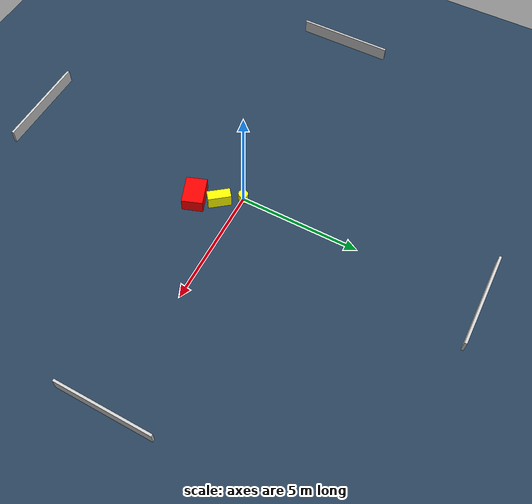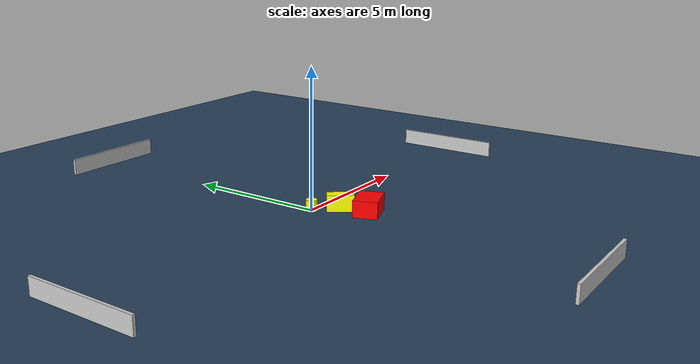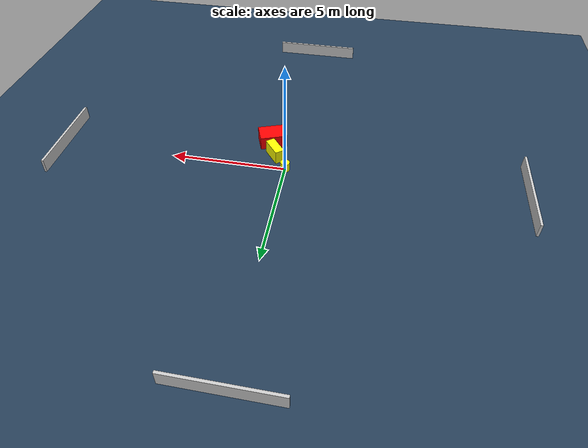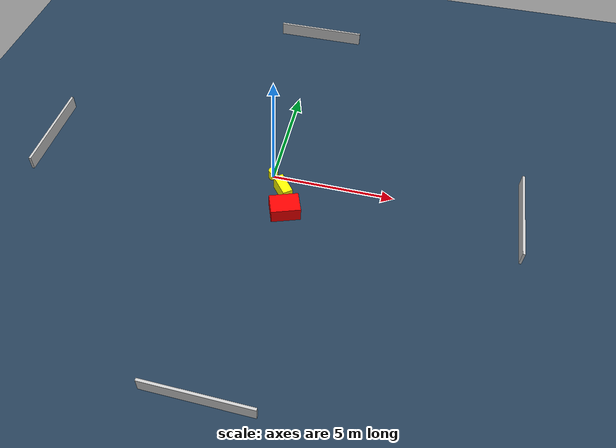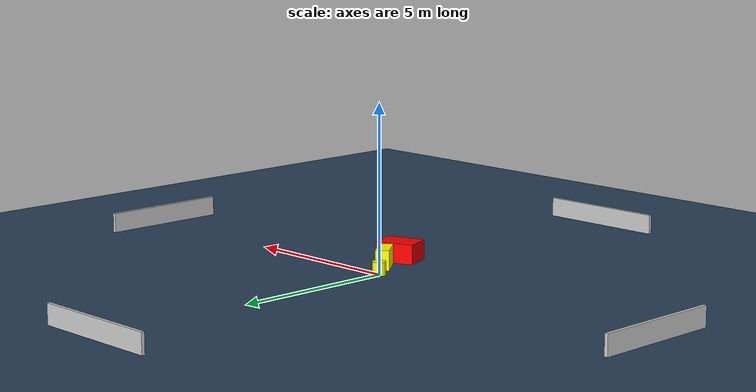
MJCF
<?xml version="1.0" ?>
<mujoco model="generated_environment">
  <option timestep="0.01" integrator="RK4" cone="elliptic"/>
  <default>
    <geom density="1"/>
  </default>
  <asset>
    <texture builtin="gradient" height="3072" name="skybox" rgb1="0.3 0.5 0.7" rgb2="0 0 0" type="skybox" width="512"/>
    <texture builtin="checker" height="300" name="groundplane" rgb1="0.2 0.3 0.4" rgb2="0.1 0.2 0.3" type="2d" width="300"/>
    <material name="groundplane" reflectance="0.2" texrepeat="5 5" texture="groundplane"/>
  </asset>
  <worldbody>
    <light dir="0 0 -1" directional="true" pos="0 0 1.5"/>
    <geom condim="3" friction="0.5 0.005 0.001" material="groundplane" name="floor" pos="0 0 0" size="0 0 0.05" type="plane"/>
    <body name="walls">
      <geom name="wall_1" condim="4" pos="-10.0 0.0 0.3" rgba="0.800000011920929 0.800000011920929 0.800000011920929 1.0" size="0.05 2.0 0.3" type="box"/>
      <geom name="wall_2" condim="4" pos="10.0 0.0 0.3" rgba="0.800000011920929 0.800000011920929 0.800000011920929 1.0" size="0.05 2.0 0.3" type="box"/>
      <geom name="wall_3" condim="4" pos="0.0 -10.0 0.3" rgba="0.800000011920929 0.800000011920929 0.800000011920929 1.0" size="2.0 0.05 0.3" type="box"/>
      <geom name="wall_4" condim="4" pos="0.0 10.0 0.3" rgba="0.800000011920929 0.800000011920929 0.800000011920929 1.0" size="2.0 0.05 0.3" type="box"/>
    </body>
    <body name="robot">
      <joint name="joint_x" type="slide" pos="0 0 0" axis="1 0 0"/>
      <joint name="joint_y" type="slide" pos="0 0 0" axis="0 1 0"/>
      <geom name="robot" type="cylinder" pos="0.0 0.0 0.2" size="0.2 0.2 0.0" mass="5.0" friction="1.0 0.005 0.0001" condim="4" rgba="1.0 1.0 0.0 1.0"/>
    </body>
    <body name="obstacle_1_movable">
      <geom name="obstacle_1_movable" condim="4" pos="0.5911116345687758 -0.7862209286841343 0.3" euler="0 0 38.17864741615612" friction="0.0 0.005 0.001" rgba="1.0 1.0 0.0 1.0" size="0.2052821453597786 0.47258015697305406 0.3" type="box" mass="0.1"/>
      <joint type="free"/>
    </body>
    <body name="obstacle_2_static">
      <geom name="obstacle_2_static" condim="4" pos="0.8941155370828379 -1.743978535439543 0.3" euler="0 0 20.037849707832866" friction="0.0 0.005 0.001" rgba="1.0 0.0 0.0 1.0" size="0.589191120853525 0.43130953716921105 0.3" type="box"/>
    </body>
  </worldbody>
  <actuator>
    <motor name="actuator_x" joint="joint_x" gear="1" ctrlrange="-1 1"/>
    <motor name="actuator_y" joint="joint_y" gear="1" ctrlrange="-1 1"/>
  </actuator>
</mujoco>
